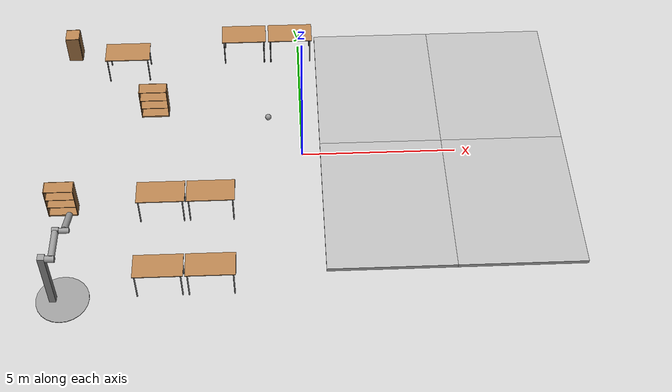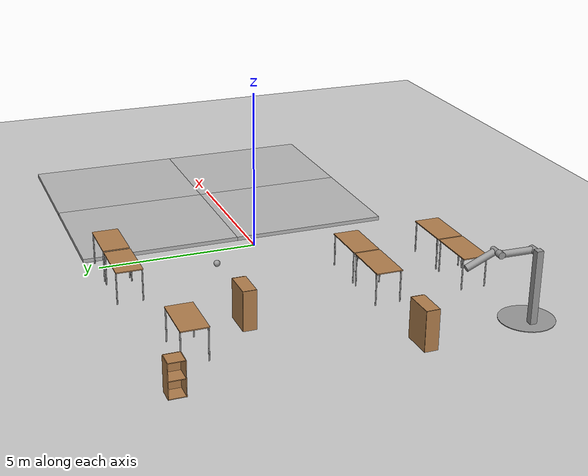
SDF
<sdf version="1.6">
 <world name="default">
  <model name="ground_plane">
   <static>1</static>
   <link name="link">
    <collision name="collision">
     <geometry><plane><normal>0 0 1</normal><size>100 100</size></plane></geometry>
     <surface>
      <contact><collide_bitmask>65535</collide_bitmask></contact>
      <friction><ode><mu>100</mu><mu2>50</mu2></ode></friction>
     </surface>
    </collision>
    <visual name="visual">
     <cast_shadows>0</cast_shadows>
     <geometry><plane><normal>0 0 1</normal><size>100 100</size></plane></geometry>
     <material>
      <script><uri>file://media/materials/scripts/gazebo.material</uri><name>Gazebo/Grey</name></script>
     </material>
    </visual>
   </link>
  </model>
  <model name="cabinet">
   <static>1</static>
   <link name="cabinet_bottom_plate">
    <inertial>
     <pose>0 0 -1 0 -0 0</pose>
     <inertia><ixx>2.05</ixx><ixy>0</ixy><ixz>0</ixz><iyy>2.05</iyy><iyz>0</iyz><izz>2.05</izz></inertia>
     <mass>25</mass>
    </inertial>
    <collision name="cabinet_bottom_plate_geom">
     <pose>0 0 0.01 0 -0 0</pose>
     <geometry><box><size>0.45 0.45 0.02</size></box></geometry>
    </collision>
    <visual name="cabinet_bottom_plate_geom_visual">
     <pose>0 0 0.01 0 -0 0</pose>
     <geometry><box><size>0.45 0.45 0.02</size></box></geometry>
     <material>
      <script><uri>file://media/materials/scripts/gazebo.material</uri><name>Gazebo/Wood</name></script>
     </material>
    </visual>
    <collision name="cabinet_bottom_plate_geom_cabinet_back_plate">
     <pose>0.235 0 0.51 0 -0 0</pose>
     <geometry><box><size>0.02 0.45 1.02</size></box></geometry>
    </collision>
    <visual name="cabinet_bottom_plate_geom_cabinet_back_plate_visual">
     <pose>0.235 0 0.51 0 -0 0</pose>
     <geometry><box><size>0.02 0.45 1.02</size></box></geometry>
     <material>
      <script><uri>file://media/materials/scripts/gazebo.material</uri><name>Gazebo/Wood</name></script>
     </material>
    </visual>
    <collision name="cabinet_bottom_plate_geom_cabinet_left_plate">
     <pose>0 0.235 0.51 0 -0 0</pose>
     <geometry><box><size>0.45 0.02 1.02</size></box></geometry>
    </collision>
    <visual name="cabinet_bottom_plate_geom_cabinet_left_plate_visual">
     <pose>0 0.235 0.51 0 -0 0</pose>
     <geometry><box><size>0.45 0.02 1.02</size></box></geometry>
     <material>
      <script><uri>file://media/materials/scripts/gazebo.material</uri><name>Gazebo/Wood</name></script>
     </material>
    </visual>
    <collision name="cabinet_bottom_plate_geom_cabinet_middle_plate">
     <pose>0 0 0.51 0 -0 0</pose>
     <geometry><box><size>0.45 0.45 0.02</size></box></geometry>
    </collision>
    <visual name="cabinet_bottom_plate_geom_cabinet_middle_plate_visual">
     <pose>0 0 0.51 0 -0 0</pose>
     <geometry><box><size>0.45 0.45 0.02</size></box></geometry>
     <material>
      <script><uri>file://media/materials/scripts/gazebo.material</uri><name>Gazebo/Wood</name></script>
     </material>
    </visual>
    <collision name="cabinet_bottom_plate_geom_cabinet_right_plate">
     <pose>0 -0.235 0.51 0 -0 0</pose>
     <geometry><box><size>0.45 0.02 1.02</size></box></geometry>
    </collision>
    <visual name="cabinet_bottom_plate_geom_cabinet_right_plate_visual">
     <pose>0 -0.235 0.51 0 -0 0</pose>
     <geometry><box><size>0.45 0.02 1.02</size></box></geometry>
     <material>
      <script><uri>file://media/materials/scripts/gazebo.material</uri><name>Gazebo/Wood</name></script>
     </material>
    </visual>
    <collision name="cabinet_bottom_plate_geom_cabinet_top_plate">
     <pose>0 0 1.01 0 -0 0</pose>
     <geometry><box><size>0.45 0.45 0.02</size></box></geometry>
    </collision>
    <visual name="cabinet_bottom_plate_geom_cabinet_top_plate_visual">
     <pose>0 0 1.01 0 -0 0</pose>
     <geometry><box><size>0.45 0.45 0.02</size></box></geometry>
     <material>
      <script><uri>file://media/materials/scripts/gazebo.material</uri><name>Gazebo/Wood</name></script>
     </material>
    </visual>
   </link>
   <pose>-7.79073 4.85276 0 0 -0 0</pose>
  </model>
  <model name="bookshelf">
   <static>1</static>
   <link name="link">
    <inertial><mass>1</mass></inertial>
    <collision name="back">
     <pose>0 0.005 0.6 0 -0 0</pose>
     <geometry><box><size>0.9 0.01 1.2</size></box></geometry>
    </collision>
    <visual name="visual1">
     <pose>0 0.005 0.6 0 -0 0</pose>
     <geometry><box><size>0.9 0.01 1.2</size></box></geometry>
     <material>
      <script><uri>file://media/materials/scripts/gazebo.material</uri><name>Gazebo/Wood</name></script>
     </material>
    </visual>
    <collision name="left_side">
     <pose>0.45 -0.195 0.6 0 -0 0</pose>
     <geometry><box><size>0.02 0.4 1.2</size></box></geometry>
    </collision>
    <visual name="visual2">
     <pose>0.45 -0.195 0.6 0 -0 0</pose>
     <geometry><box><size>0.02 0.4 1.2</size></box></geometry>
     <material>
      <script><uri>file://media/materials/scripts/gazebo.material</uri><name>Gazebo/Wood</name></script>
     </material>
    </visual>
    <collision name="right_side">
     <pose>-0.45 -0.195 0.6 0 -0 0</pose>
     <geometry><box><size>0.02 0.4 1.2</size></box></geometry>
    </collision>
    <visual name="visual3">
     <pose>-0.45 -0.195 0.6 0 -0 0</pose>
     <geometry><box><size>0.02 0.4 1.2</size></box></geometry>
     <material>
      <script><uri>file://media/materials/scripts/gazebo.material</uri><name>Gazebo/Wood</name></script>
     </material>
    </visual>
    <collision name="bottom">
     <pose>0 -0.195 0.03 0 -0 0</pose>
     <geometry><box><size>0.88 0.4 0.06</size></box></geometry>
    </collision>
    <visual name="visual4">
     <pose>0 -0.195 0.03 0 -0 0</pose>
     <geometry><box><size>0.88 0.4 0.06</size></box></geometry>
     <material>
      <script><uri>file://media/materials/scripts/gazebo.material</uri><name>Gazebo/Wood</name></script>
     </material>
    </visual>
    <collision name="top">
     <pose>0 -0.195 1.19 0 -0 0</pose>
     <geometry><box><size>0.88 0.4 0.02</size></box></geometry>
    </collision>
    <visual name="visual5">
     <pose>0 -0.195 1.19 0 -0 0</pose>
     <geometry><box><size>0.88 0.4 0.02</size></box></geometry>
     <material>
      <script><uri>file://media/materials/scripts/gazebo.material</uri><name>Gazebo/Wood</name></script>
     </material>
    </visual>
    <collision name="low_shelf">
     <pose>0 -0.195 0.43 0 -0 0</pose>
     <geometry><box><size>0.88 0.4 0.02</size></box></geometry>
    </collision>
    <visual name="visual6">
     <pose>0 -0.195 0.43 0 -0 0</pose>
     <geometry><box><size>0.88 0.4 0.02</size></box></geometry>
     <material>
      <script><uri>file://media/materials/scripts/gazebo.material</uri><name>Gazebo/Wood</name></script>
     </material>
    </visual>
    <collision name="high_shelf">
     <pose>0 -0.195 0.8 0 -0 0</pose>
     <geometry><box><size>0.88 0.4 0.02</size></box></geometry>
    </collision>
    <visual name="visual7">
     <pose>0 -0.195 0.8 0 -0 0</pose>
     <geometry><box><size>0.88 0.4 0.02</size></box></geometry>
     <material>
      <script><uri>file://media/materials/scripts/gazebo.material</uri><name>Gazebo/Wood</name></script>
     </material>
    </visual>
   </link>
   <pose>-4.88239 2.23385 0 0 -0 0</pose>
  </model>
  <model name="table">
   <static>1</static>
   <link name="link">
    <collision name="surface">
     <pose>0 0 1 0 -0 0</pose>
     <geometry><box><size>1.5 0.8 0.03</size></box></geometry>
     <surface><friction><ode><mu>0.6</mu><mu2>0.6</mu2></ode></friction></surface>
    </collision>
    <visual name="visual1">
     <pose>0 0 1 0 -0 0</pose>
     <geometry><box><size>1.5 0.8 0.03</size></box></geometry>
     <material>
      <script><uri>file://media/materials/scripts/gazebo.material</uri><name>Gazebo/Wood</name></script>
     </material>
    </visual>
    <collision name="front_left_leg">
     <pose>0.68 0.38 0.5 0 -0 0</pose>
     <geometry><cylinder><radius>0.02</radius><length>1</length></cylinder></geometry>
    </collision>
    <visual name="front_left_leg">
     <pose>0.68 0.38 0.5 0 -0 0</pose>
     <geometry><cylinder><radius>0.02</radius><length>1</length></cylinder></geometry>
     <material>
      <script><uri>file://media/materials/scripts/gazebo.material</uri><name>Gazebo/Grey</name></script>
     </material>
    </visual>
    <collision name="front_right_leg">
     <pose>0.68 -0.38 0.5 0 -0 0</pose>
     <geometry><cylinder><radius>0.02</radius><length>1</length></cylinder></geometry>
    </collision>
    <visual name="front_right_leg">
     <pose>0.68 -0.38 0.5 0 -0 0</pose>
     <geometry><cylinder><radius>0.02</radius><length>1</length></cylinder></geometry>
     <material>
      <script><uri>file://media/materials/scripts/gazebo.material</uri><name>Gazebo/Grey</name></script>
     </material>
    </visual>
    <collision name="back_right_leg">
     <pose>-0.68 -0.38 0.5 0 -0 0</pose>
     <geometry><cylinder><radius>0.02</radius><length>1</length></cylinder></geometry>
    </collision>
    <visual name="back_right_leg">
     <pose>-0.68 -0.38 0.5 0 -0 0</pose>
     <geometry><cylinder><radius>0.02</radius><length>1</length></cylinder></geometry>
     <material>
      <script><uri>file://media/materials/scripts/gazebo.material</uri><name>Gazebo/Grey</name></script>
     </material>
    </visual>
    <collision name="back_left_leg">
     <pose>-0.68 0.38 0.5 0 -0 0</pose>
     <geometry><cylinder><radius>0.02</radius><length>1</length></cylinder></geometry>
    </collision>
    <visual name="back_left_leg">
     <pose>-0.68 0.38 0.5 0 -0 0</pose>
     <geometry><cylinder><radius>0.02</radius><length>1</length></cylinder></geometry>
     <material>
      <script><uri>file://media/materials/scripts/gazebo.material</uri><name>Gazebo/Grey</name></script>
     </material>
    </visual>
   </link>
   <pose>-5.82965 3.95107 0 0 -0 0</pose>
  </model>
  <model name="table_0">
   <static>1</static>
   <link name="link">
    <collision name="surface">
     <pose>0 0 1 0 -0 0</pose>
     <geometry><box><size>1.5 0.8 0.03</size></box></geometry>
     <surface><friction><ode><mu>0.6</mu><mu2>0.6</mu2></ode></friction></surface>
    </collision>
    <visual name="visual1">
     <pose>0 0 1 0 -0 0</pose>
     <geometry><box><size>1.5 0.8 0.03</size></box></geometry>
     <material>
      <script><uri>file://media/materials/scripts/gazebo.material</uri><name>Gazebo/Wood</name></script>
     </material>
    </visual>
    <collision name="front_left_leg">
     <pose>0.68 0.38 0.5 0 -0 0</pose>
     <geometry><cylinder><radius>0.02</radius><length>1</length></cylinder></geometry>
    </collision>
    <visual name="front_left_leg">
     <pose>0.68 0.38 0.5 0 -0 0</pose>
     <geometry><cylinder><radius>0.02</radius><length>1</length></cylinder></geometry>
     <material>
      <script><uri>file://media/materials/scripts/gazebo.material</uri><name>Gazebo/Grey</name></script>
     </material>
    </visual>
    <collision name="front_right_leg">
     <pose>0.68 -0.38 0.5 0 -0 0</pose>
     <geometry><cylinder><radius>0.02</radius><length>1</length></cylinder></geometry>
    </collision>
    <visual name="front_right_leg">
     <pose>0.68 -0.38 0.5 0 -0 0</pose>
     <geometry><cylinder><radius>0.02</radius><length>1</length></cylinder></geometry>
     <material>
      <script><uri>file://media/materials/scripts/gazebo.material</uri><name>Gazebo/Grey</name></script>
     </material>
    </visual>
    <collision name="back_right_leg">
     <pose>-0.68 -0.38 0.5 0 -0 0</pose>
     <geometry><cylinder><radius>0.02</radius><length>1</length></cylinder></geometry>
    </collision>
    <visual name="back_right_leg">
     <pose>-0.68 -0.38 0.5 0 -0 0</pose>
     <geometry><cylinder><radius>0.02</radius><length>1</length></cylinder></geometry>
     <material>
      <script><uri>file://media/materials/scripts/gazebo.material</uri><name>Gazebo/Grey</name></script>
     </material>
    </visual>
    <collision name="back_left_leg">
     <pose>-0.68 0.38 0.5 0 -0 0</pose>
     <geometry><cylinder><radius>0.02</radius><length>1</length></cylinder></geometry>
    </collision>
    <visual name="back_left_leg">
     <pose>-0.68 0.38 0.5 0 -0 0</pose>
     <geometry><cylinder><radius>0.02</radius><length>1</length></cylinder></geometry>
     <material>
      <script><uri>file://media/materials/scripts/gazebo.material</uri><name>Gazebo/Grey</name></script>
     </material>
    </visual>
   </link>
   <pose>-0.288993 4.6714 0 0 -0 0</pose>
  </model>
  <model name="table_1">
   <static>1</static>
   <link name="link">
    <collision name="surface">
     <pose>0 0 1 0 -0 0</pose>
     <geometry><box><size>1.5 0.8 0.03</size></box></geometry>
     <surface><friction><ode><mu>0.6</mu><mu2>0.6</mu2></ode></friction></surface>
    </collision>
    <visual name="visual1">
     <pose>0 0 1 0 -0 0</pose>
     <geometry><box><size>1.5 0.8 0.03</size></box></geometry>
     <material>
      <script><uri>file://media/materials/scripts/gazebo.material</uri><name>Gazebo/Wood</name></script>
     </material>
    </visual>
    <collision name="front_left_leg">
     <pose>0.68 0.38 0.5 0 -0 0</pose>
     <geometry><cylinder><radius>0.02</radius><length>1</length></cylinder></geometry>
    </collision>
    <visual name="front_left_leg">
     <pose>0.68 0.38 0.5 0 -0 0</pose>
     <geometry><cylinder><radius>0.02</radius><length>1</length></cylinder></geometry>
     <material>
      <script><uri>file://media/materials/scripts/gazebo.material</uri><name>Gazebo/Grey</name></script>
     </material>
    </visual>
    <collision name="front_right_leg">
     <pose>0.68 -0.38 0.5 0 -0 0</pose>
     <geometry><cylinder><radius>0.02</radius><length>1</length></cylinder></geometry>
    </collision>
    <visual name="front_right_leg">
     <pose>0.68 -0.38 0.5 0 -0 0</pose>
     <geometry><cylinder><radius>0.02</radius><length>1</length></cylinder></geometry>
     <material>
      <script><uri>file://media/materials/scripts/gazebo.material</uri><name>Gazebo/Grey</name></script>
     </material>
    </visual>
    <collision name="back_right_leg">
     <pose>-0.68 -0.38 0.5 0 -0 0</pose>
     <geometry><cylinder><radius>0.02</radius><length>1</length></cylinder></geometry>
    </collision>
    <visual name="back_right_leg">
     <pose>-0.68 -0.38 0.5 0 -0 0</pose>
     <geometry><cylinder><radius>0.02</radius><length>1</length></cylinder></geometry>
     <material>
      <script><uri>file://media/materials/scripts/gazebo.material</uri><name>Gazebo/Grey</name></script>
     </material>
    </visual>
    <collision name="back_left_leg">
     <pose>-0.68 0.38 0.5 0 -0 0</pose>
     <geometry><cylinder><radius>0.02</radius><length>1</length></cylinder></geometry>
    </collision>
    <visual name="back_left_leg">
     <pose>-0.68 0.38 0.5 0 -0 0</pose>
     <geometry><cylinder><radius>0.02</radius><length>1</length></cylinder></geometry>
     <material>
      <script><uri>file://media/materials/scripts/gazebo.material</uri><name>Gazebo/Grey</name></script>
     </material>
    </visual>
   </link>
   <pose>-1.87609 4.67031 0 0 -0 0</pose>
  </model>
  <model name="table_2">
   <static>1</static>
   <link name="link">
    <collision name="surface">
     <pose>0 0 1 0 -0 0</pose>
     <geometry><box><size>1.5 0.8 0.03</size></box></geometry>
     <surface><friction><ode><mu>0.6</mu><mu2>0.6</mu2></ode></friction></surface>
    </collision>
    <visual name="visual1">
     <pose>0 0 1 0 -0 0</pose>
     <geometry><box><size>1.5 0.8 0.03</size></box></geometry>
     <material>
      <script><uri>file://media/materials/scripts/gazebo.material</uri><name>Gazebo/Wood</name></script>
     </material>
    </visual>
    <collision name="front_left_leg">
     <pose>0.68 0.38 0.5 0 -0 0</pose>
     <geometry><cylinder><radius>0.02</radius><length>1</length></cylinder></geometry>
    </collision>
    <visual name="front_left_leg">
     <pose>0.68 0.38 0.5 0 -0 0</pose>
     <geometry><cylinder><radius>0.02</radius><length>1</length></cylinder></geometry>
     <material>
      <script><uri>file://media/materials/scripts/gazebo.material</uri><name>Gazebo/Grey</name></script>
     </material>
    </visual>
    <collision name="front_right_leg">
     <pose>0.68 -0.38 0.5 0 -0 0</pose>
     <geometry><cylinder><radius>0.02</radius><length>1</length></cylinder></geometry>
    </collision>
    <visual name="front_right_leg">
     <pose>0.68 -0.38 0.5 0 -0 0</pose>
     <geometry><cylinder><radius>0.02</radius><length>1</length></cylinder></geometry>
     <material>
      <script><uri>file://media/materials/scripts/gazebo.material</uri><name>Gazebo/Grey</name></script>
     </material>
    </visual>
    <collision name="back_right_leg">
     <pose>-0.68 -0.38 0.5 0 -0 0</pose>
     <geometry><cylinder><radius>0.02</radius><length>1</length></cylinder></geometry>
    </collision>
    <visual name="back_right_leg">
     <pose>-0.68 -0.38 0.5 0 -0 0</pose>
     <geometry><cylinder><radius>0.02</radius><length>1</length></cylinder></geometry>
     <material>
      <script><uri>file://media/materials/scripts/gazebo.material</uri><name>Gazebo/Grey</name></script>
     </material>
    </visual>
    <collision name="back_left_leg">
     <pose>-0.68 0.38 0.5 0 -0 0</pose>
     <geometry><cylinder><radius>0.02</radius><length>1</length></cylinder></geometry>
    </collision>
    <visual name="back_left_leg">
     <pose>-0.68 0.38 0.5 0 -0 0</pose>
     <geometry><cylinder><radius>0.02</radius><length>1</length></cylinder></geometry>
     <material>
      <script><uri>file://media/materials/scripts/gazebo.material</uri><name>Gazebo/Grey</name></script>
     </material>
    </visual>
   </link>
   <pose>-4.46585 -2.17895 0 0 -0 0</pose>
  </model>
  <model name="table_3">
   <static>1</static>
   <link name="link">
    <collision name="surface">
     <pose>0 0 1 0 -0 0</pose>
     <geometry><box><size>1.5 0.8 0.03</size></box></geometry>
     <surface><friction><ode><mu>0.6</mu><mu2>0.6</mu2></ode></friction></surface>
    </collision>
    <visual name="visual1">
     <pose>0 0 1 0 -0 0</pose>
     <geometry><box><size>1.5 0.8 0.03</size></box></geometry>
     <material>
      <script><uri>file://media/materials/scripts/gazebo.material</uri><name>Gazebo/Wood</name></script>
     </material>
    </visual>
    <collision name="front_left_leg">
     <pose>0.68 0.38 0.5 0 -0 0</pose>
     <geometry><cylinder><radius>0.02</radius><length>1</length></cylinder></geometry>
    </collision>
    <visual name="front_left_leg">
     <pose>0.68 0.38 0.5 0 -0 0</pose>
     <geometry><cylinder><radius>0.02</radius><length>1</length></cylinder></geometry>
     <material>
      <script><uri>file://media/materials/scripts/gazebo.material</uri><name>Gazebo/Grey</name></script>
     </material>
    </visual>
    <collision name="front_right_leg">
     <pose>0.68 -0.38 0.5 0 -0 0</pose>
     <geometry><cylinder><radius>0.02</radius><length>1</length></cylinder></geometry>
    </collision>
    <visual name="front_right_leg">
     <pose>0.68 -0.38 0.5 0 -0 0</pose>
     <geometry><cylinder><radius>0.02</radius><length>1</length></cylinder></geometry>
     <material>
      <script><uri>file://media/materials/scripts/gazebo.material</uri><name>Gazebo/Grey</name></script>
     </material>
    </visual>
    <collision name="back_right_leg">
     <pose>-0.68 -0.38 0.5 0 -0 0</pose>
     <geometry><cylinder><radius>0.02</radius><length>1</length></cylinder></geometry>
    </collision>
    <visual name="back_right_leg">
     <pose>-0.68 -0.38 0.5 0 -0 0</pose>
     <geometry><cylinder><radius>0.02</radius><length>1</length></cylinder></geometry>
     <material>
      <script><uri>file://media/materials/scripts/gazebo.material</uri><name>Gazebo/Grey</name></script>
     </material>
    </visual>
    <collision name="back_left_leg">
     <pose>-0.68 0.38 0.5 0 -0 0</pose>
     <geometry><cylinder><radius>0.02</radius><length>1</length></cylinder></geometry>
    </collision>
    <visual name="back_left_leg">
     <pose>-0.68 0.38 0.5 0 -0 0</pose>
     <geometry><cylinder><radius>0.02</radius><length>1</length></cylinder></geometry>
     <material>
      <script><uri>file://media/materials/scripts/gazebo.material</uri><name>Gazebo/Grey</name></script>
     </material>
    </visual>
   </link>
   <pose>-2.91567 -2.17764 0 0 -0 0</pose>
  </model>
  <model name="table_4">
   <static>1</static>
   <link name="link">
    <collision name="surface">
     <pose>0 0 1 0 -0 0</pose>
     <geometry><box><size>1.5 0.8 0.03</size></box></geometry>
     <surface><friction><ode><mu>0.6</mu><mu2>0.6</mu2></ode></friction></surface>
    </collision>
    <visual name="visual1">
     <pose>0 0 1 0 -0 0</pose>
     <geometry><box><size>1.5 0.8 0.03</size></box></geometry>
     <material>
      <script><uri>file://media/materials/scripts/gazebo.material</uri><name>Gazebo/Wood</name></script>
     </material>
    </visual>
    <collision name="front_left_leg">
     <pose>0.68 0.38 0.5 0 -0 0</pose>
     <geometry><cylinder><radius>0.02</radius><length>1</length></cylinder></geometry>
    </collision>
    <visual name="front_left_leg">
     <pose>0.68 0.38 0.5 0 -0 0</pose>
     <geometry><cylinder><radius>0.02</radius><length>1</length></cylinder></geometry>
     <material>
      <script><uri>file://media/materials/scripts/gazebo.material</uri><name>Gazebo/Grey</name></script>
     </material>
    </visual>
    <collision name="front_right_leg">
     <pose>0.68 -0.38 0.5 0 -0 0</pose>
     <geometry><cylinder><radius>0.02</radius><length>1</length></cylinder></geometry>
    </collision>
    <visual name="front_right_leg">
     <pose>0.68 -0.38 0.5 0 -0 0</pose>
     <geometry><cylinder><radius>0.02</radius><length>1</length></cylinder></geometry>
     <material>
      <script><uri>file://media/materials/scripts/gazebo.material</uri><name>Gazebo/Grey</name></script>
     </material>
    </visual>
    <collision name="back_right_leg">
     <pose>-0.68 -0.38 0.5 0 -0 0</pose>
     <geometry><cylinder><radius>0.02</radius><length>1</length></cylinder></geometry>
    </collision>
    <visual name="back_right_leg">
     <pose>-0.68 -0.38 0.5 0 -0 0</pose>
     <geometry><cylinder><radius>0.02</radius><length>1</length></cylinder></geometry>
     <material>
      <script><uri>file://media/materials/scripts/gazebo.material</uri><name>Gazebo/Grey</name></script>
     </material>
    </visual>
    <collision name="back_left_leg">
     <pose>-0.68 0.38 0.5 0 -0 0</pose>
     <geometry><cylinder><radius>0.02</radius><length>1</length></cylinder></geometry>
    </collision>
    <visual name="back_left_leg">
     <pose>-0.68 0.38 0.5 0 -0 0</pose>
     <geometry><cylinder><radius>0.02</radius><length>1</length></cylinder></geometry>
     <material>
      <script><uri>file://media/materials/scripts/gazebo.material</uri><name>Gazebo/Grey</name></script>
     </material>
    </visual>
   </link>
   <pose>-4.42755 -4.94835 0 0 -0 0</pose>
  </model>
  <model name="table_5">
   <static>1</static>
   <link name="link">
    <collision name="surface">
     <pose>0 0 1 0 -0 0</pose>
     <geometry><box><size>1.5 0.8 0.03</size></box></geometry>
     <surface><friction><ode><mu>0.6</mu><mu2>0.6</mu2></ode></friction></surface>
    </collision>
    <visual name="visual1">
     <pose>0 0 1 0 -0 0</pose>
     <geometry><box><size>1.5 0.8 0.03</size></box></geometry>
     <material>
      <script><uri>file://media/materials/scripts/gazebo.material</uri><name>Gazebo/Wood</name></script>
     </material>
    </visual>
    <collision name="front_left_leg">
     <pose>0.68 0.38 0.5 0 -0 0</pose>
     <geometry><cylinder><radius>0.02</radius><length>1</length></cylinder></geometry>
    </collision>
    <visual name="front_left_leg">
     <pose>0.68 0.38 0.5 0 -0 0</pose>
     <geometry><cylinder><radius>0.02</radius><length>1</length></cylinder></geometry>
     <material>
      <script><uri>file://media/materials/scripts/gazebo.material</uri><name>Gazebo/Grey</name></script>
     </material>
    </visual>
    <collision name="front_right_leg">
     <pose>0.68 -0.38 0.5 0 -0 0</pose>
     <geometry><cylinder><radius>0.02</radius><length>1</length></cylinder></geometry>
    </collision>
    <visual name="front_right_leg">
     <pose>0.68 -0.38 0.5 0 -0 0</pose>
     <geometry><cylinder><radius>0.02</radius><length>1</length></cylinder></geometry>
     <material>
      <script><uri>file://media/materials/scripts/gazebo.material</uri><name>Gazebo/Grey</name></script>
     </material>
    </visual>
    <collision name="back_right_leg">
     <pose>-0.68 -0.38 0.5 0 -0 0</pose>
     <geometry><cylinder><radius>0.02</radius><length>1</length></cylinder></geometry>
    </collision>
    <visual name="back_right_leg">
     <pose>-0.68 -0.38 0.5 0 -0 0</pose>
     <geometry><cylinder><radius>0.02</radius><length>1</length></cylinder></geometry>
     <material>
      <script><uri>file://media/materials/scripts/gazebo.material</uri><name>Gazebo/Grey</name></script>
     </material>
    </visual>
    <collision name="back_left_leg">
     <pose>-0.68 0.38 0.5 0 -0 0</pose>
     <geometry><cylinder><radius>0.02</radius><length>1</length></cylinder></geometry>
    </collision>
    <visual name="back_left_leg">
     <pose>-0.68 0.38 0.5 0 -0 0</pose>
     <geometry><cylinder><radius>0.02</radius><length>1</length></cylinder></geometry>
     <material>
      <script><uri>file://media/materials/scripts/gazebo.material</uri><name>Gazebo/Grey</name></script>
     </material>
    </visual>
   </link>
   <pose>-2.87754 -4.94722 0 0 -0 0</pose>
  </model>
  <model name="my_ball">
   <link name="link_0">
    <inertial>
     <mass>1</mass>
     <inertia><ixx>0.1</ixx><ixy>0</ixy><ixz>0</ixz><iyy>0.1</iyy><iyz>0</iyz><izz>0.1</izz></inertia>
    </inertial>
    <visual name="visual">
     <geometry><sphere><radius>0.1</radius></sphere></geometry>
     <material>
      <lighting>1</lighting>
      <script><uri>file://media/materials/scripts/gazebo.material</uri><name>Gazebo/Grey</name></script>
      <ambient>1 1 1 1</ambient>
      <diffuse>1 1 1 1</diffuse>
      <specular>1 1 1 1</specular>
      <emissive>1 1 1 1</emissive>
      <shader type="vertex"><normal_map>__default__</normal_map></shader>
     </material>
    </visual>
    <collision name="collision">
     <geometry><sphere><radius>0.1</radius></sphere></geometry>
     <surface>
      <friction>
       <ode><mu>1</mu><mu2>1</mu2><fdir1>0 0 0</fdir1><slip1>0</slip1><slip2>0</slip2></ode>
       <torsional>
        <coefficient>1</coefficient>
        <patch_radius>0</patch_radius>
        <surface_radius>0</surface_radius>
        <use_patch_radius>1</use_patch_radius>
        <ode><slip>0</slip></ode>
       </torsional>
      </friction>
      <bounce><restitution_coefficient>0</restitution_coefficient><threshold>1e+06</threshold></bounce>
      <contact>
       <collide_without_contact>0</collide_without_contact>
       <collide_without_contact_bitmask>1</collide_without_contact_bitmask>
       <collide_bitmask>1</collide_bitmask>
       <ode>
        <soft_cfm>0</soft_cfm>
        <soft_erp>0.2</soft_erp>
        <kp>1e+13</kp>
        <kd>1</kd>
        <max_vel>0.01</max_vel>
        <min_depth>0</min_depth>
       </ode>
       <bullet>
        <split_impulse>1</split_impulse>
        <split_impulse_penetration_threshold>-0.01</split_impulse_penetration_threshold>
        <soft_cfm>0</soft_cfm>
        <soft_erp>0.2</soft_erp>
        <kp>1e+13</kp>
        <kd>1</kd>
       </bullet>
      </contact>
     </surface>
    </collision>
   </link>
   <static>0</static>
   <pose>-1.09927 1.60374 0.1 0 -0 0</pose>
  </model>
  <model name="double_pendulum_with_base">
   <link name="base">
    <inertial>
     <mass>100</mass>
     <inertia><ixx>1</ixx><ixy>0</ixy><ixz>0</ixz><iyy>1</iyy><iyz>0</iyz><izz>1</izz></inertia>
    </inertial>
    <visual name="vis_plate_on_ground">
     <pose>0 0 0.01 0 -0 0</pose>
     <geometry><cylinder><radius>0.8</radius><length>0.02</length></cylinder></geometry>
     <material>
      <script><uri>file://media/materials/scripts/gazebo.material</uri><name>Gazebo/Grey</name></script>
     </material>
    </visual>
    <visual name="vis_pole">
     <pose>-0.275 0 1.1 0 -0 0</pose>
     <geometry><box><size>0.2 0.2 2.2</size></box></geometry>
     <material>
      <script><uri>file://media/materials/scripts/gazebo.material</uri><name>Gazebo/Grey</name></script>
     </material>
    </visual>
    <collision name="col_plate_on_ground">
     <pose>0 0 0.01 0 -0 0</pose>
     <geometry><cylinder><radius>0.8</radius><length>0.02</length></cylinder></geometry>
    </collision>
    <collision name="col_pole">
     <pose>-0.275 0 1.1 0 -0 0</pose>
     <geometry><box><size>0.2 0.2 2.2</size></box></geometry>
    </collision>
   </link>
   <link name="upper_link">
    <pose>0 0 2.1 -1.5708 0 0</pose>
    <inertial>
     <pose>0 0 0.5 0 -0 0</pose>
     <inertia><ixx>1</ixx><ixy>0</ixy><ixz>0</ixz><iyy>1</iyy><iyz>0</iyz><izz>1</izz></inertia>
     <mass>1</mass>
    </inertial>
    <visual name="vis_upper_joint">
     <pose>-0.05 0 0 3.14159 1.57079 3.14159</pose>
     <geometry><cylinder><radius>0.1</radius><length>0.3</length></cylinder></geometry>
     <material>
      <script><uri>file://media/materials/scripts/gazebo.material</uri><name>Gazebo/Grey</name></script>
     </material>
    </visual>
    <visual name="vis_lower_joint">
     <pose>0 0 1 3.14159 1.57079 3.14159</pose>
     <geometry><cylinder><radius>0.1</radius><length>0.2</length></cylinder></geometry>
     <material>
      <script><uri>file://media/materials/scripts/gazebo.material</uri><name>Gazebo/Grey</name></script>
     </material>
    </visual>
    <visual name="vis_cylinder">
     <pose>0 0 0.5 0 -0 0</pose>
     <geometry><cylinder><radius>0.1</radius><length>0.9</length></cylinder></geometry>
     <material>
      <script><uri>file://media/materials/scripts/gazebo.material</uri><name>Gazebo/Grey</name></script>
     </material>
    </visual>
    <collision name="col_upper_joint">
     <pose>-0.05 0 0 3.14159 1.57079 3.14159</pose>
     <geometry><cylinder><radius>0.1</radius><length>0.3</length></cylinder></geometry>
    </collision>
    <collision name="col_lower_joint">
     <pose>0 0 1 3.14159 1.57079 3.14159</pose>
     <geometry><cylinder><radius>0.1</radius><length>0.2</length></cylinder></geometry>
    </collision>
    <collision name="col_cylinder">
     <pose>0 0 0.5 0 -0 0</pose>
     <geometry><cylinder><radius>0.1</radius><length>0.9</length></cylinder></geometry>
    </collision>
   </link>
   <link name="lower_link">
    <pose>0.25 1 2.1 -2 0 0</pose>
    <inertial>
     <pose>0 0 0.5 0 -0 0</pose>
     <inertia><ixx>1</ixx><ixy>0</ixy><ixz>0</ixz><iyy>1</iyy><iyz>0</iyz><izz>1</izz></inertia>
     <mass>1</mass>
    </inertial>
    <visual name="vis_lower_joint">
     <pose>0 0 0 3.14159 1.57079 3.14159</pose>
     <geometry><cylinder><radius>0.08</radius><length>0.3</length></cylinder></geometry>
     <material>
      <script><uri>file://media/materials/scripts/gazebo.material</uri><name>Gazebo/Grey</name></script>
     </material>
    </visual>
    <visual name="vis_cylinder">
     <pose>0 0 0.5 0 -0 0</pose>
     <geometry><cylinder><radius>0.1</radius><length>0.9</length></cylinder></geometry>
     <material>
      <script><uri>file://media/materials/scripts/gazebo.material</uri><name>Gazebo/Grey</name></script>
     </material>
    </visual>
    <collision name="col_lower_joint">
     <pose>0 0 0 3.14159 1.57079 3.14159</pose>
     <geometry><cylinder><radius>0.08</radius><length>0.3</length></cylinder></geometry>
    </collision>
    <collision name="col_cylinder">
     <pose>0 0 0.5 0 -0 0</pose>
     <geometry><cylinder><radius>0.1</radius><length>0.9</length></cylinder></geometry>
    </collision>
   </link>
   <joint name="upper_joint" type="revolute">
    <parent>base</parent>
    <child>upper_link</child>
    <axis>
     <xyz>1 0 0</xyz>
     <use_parent_model_frame>1</use_parent_model_frame>
     <limit><lower>-1e+16</lower><upper>1e+16</upper></limit>
     <dynamics><spring_reference>0</spring_reference><spring_stiffness>0</spring_stiffness></dynamics>
    </axis>
   </joint>
   <joint name="lower_joint" type="revolute">
    <parent>upper_link</parent>
    <child>lower_link</child>
    <axis>
     <xyz>1 0 0</xyz>
     <use_parent_model_frame>1</use_parent_model_frame>
     <limit><lower>-1e+16</lower><upper>1e+16</upper></limit>
     <dynamics><spring_reference>0</spring_reference><spring_stiffness>0</spring_stiffness></dynamics>
    </axis>
   </joint>
   <pose>-7.32609 -5.36739 0 0 0 -0.025785</pose>
  </model>
  <model name="mud_box">
   <static>1</static>
   <link name="link">
    <collision name="collision"><geometry><box><size>8 10 0.2</size></box></geometry></collision>
    <visual name="visual_1">
     <pose>-2 2.5 0 0 -0 0</pose>
     <cast_shadows>0</cast_shadows>
     <geometry><box><size>4 5 0.2</size></box></geometry>
     <material>
      <script>
       <uri>model://mud_box/materials/scripts</uri>
       <uri>model://mud_box/materials/textures</uri>
       <name>vrc/mud</name>
      </script>
     </material>
    </visual>
    <visual name="visual_2">
     <pose>2 2.5 0 0 -0 0</pose>
     <cast_shadows>0</cast_shadows>
     <geometry><box><size>4 5 0.2</size></box></geometry>
     <material>
      <script>
       <uri>model://mud_box/materials/scripts</uri>
       <uri>model://mud_box/materials/textures</uri>
       <name>vrc/mud</name>
      </script>
     </material>
    </visual>
    <visual name="visual_3">
     <pose>2 -2.5 0 0 -0 0</pose>
     <cast_shadows>0</cast_shadows>
     <geometry><box><size>4 5 0.2</size></box></geometry>
     <material>
      <script>
       <uri>model://mud_box/materials/scripts</uri>
       <uri>model://mud_box/materials/textures</uri>
       <name>vrc/mud</name>
      </script>
     </material>
    </visual>
    <visual name="visual_4">
     <pose>-2 -2.5 0 0 -0 0</pose>
     <cast_shadows>0</cast_shadows>
     <geometry><box><size>4 5 0.2</size></box></geometry>
     <material>
      <script>
       <uri>model://mud_box/materials/scripts</uri>
       <uri>model://mud_box/materials/textures</uri>
       <name>vrc/mud</name>
      </script>
     </material>
    </visual>
   </link>
   <pose>4.57618 0.372556 0 0 -0 0</pose>
  </model>
  <model name="bookshelf_0">
   <static>1</static>
   <link name="link">
    <inertial><mass>1</mass></inertial>
    <collision name="back">
     <pose>0 0.005 0.6 0 -0 0</pose>
     <geometry><box><size>0.9 0.01 1.2</size></box></geometry>
    </collision>
    <visual name="visual1">
     <pose>0 0.005 0.6 0 -0 0</pose>
     <geometry><box><size>0.9 0.01 1.2</size></box></geometry>
     <material>
      <script><uri>file://media/materials/scripts/gazebo.material</uri><name>Gazebo/Wood</name></script>
     </material>
    </visual>
    <collision name="left_side">
     <pose>0.45 -0.195 0.6 0 -0 0</pose>
     <geometry><box><size>0.02 0.4 1.2</size></box></geometry>
    </collision>
    <visual name="visual2">
     <pose>0.45 -0.195 0.6 0 -0 0</pose>
     <geometry><box><size>0.02 0.4 1.2</size></box></geometry>
     <material>
      <script><uri>file://media/materials/scripts/gazebo.material</uri><name>Gazebo/Wood</name></script>
     </material>
    </visual>
    <collision name="right_side">
     <pose>-0.45 -0.195 0.6 0 -0 0</pose>
     <geometry><box><size>0.02 0.4 1.2</size></box></geometry>
    </collision>
    <visual name="visual3">
     <pose>-0.45 -0.195 0.6 0 -0 0</pose>
     <geometry><box><size>0.02 0.4 1.2</size></box></geometry>
     <material>
      <script><uri>file://media/materials/scripts/gazebo.material</uri><name>Gazebo/Wood</name></script>
     </material>
    </visual>
    <collision name="bottom">
     <pose>0 -0.195 0.03 0 -0 0</pose>
     <geometry><box><size>0.88 0.4 0.06</size></box></geometry>
    </collision>
    <visual name="visual4">
     <pose>0 -0.195 0.03 0 -0 0</pose>
     <geometry><box><size>0.88 0.4 0.06</size></box></geometry>
     <material>
      <script><uri>file://media/materials/scripts/gazebo.material</uri><name>Gazebo/Wood</name></script>
     </material>
    </visual>
    <collision name="top">
     <pose>0 -0.195 1.19 0 -0 0</pose>
     <geometry><box><size>0.88 0.4 0.02</size></box></geometry>
    </collision>
    <visual name="visual5">
     <pose>0 -0.195 1.19 0 -0 0</pose>
     <geometry><box><size>0.88 0.4 0.02</size></box></geometry>
     <material>
      <script><uri>file://media/materials/scripts/gazebo.material</uri><name>Gazebo/Wood</name></script>
     </material>
    </visual>
    <collision name="low_shelf">
     <pose>0 -0.195 0.43 0 -0 0</pose>
     <geometry><box><size>0.88 0.4 0.02</size></box></geometry>
    </collision>
    <visual name="visual6">
     <pose>0 -0.195 0.43 0 -0 0</pose>
     <geometry><box><size>0.88 0.4 0.02</size></box></geometry>
     <material>
      <script><uri>file://media/materials/scripts/gazebo.material</uri><name>Gazebo/Wood</name></script>
     </material>
    </visual>
    <collision name="high_shelf">
     <pose>0 -0.195 0.8 0 -0 0</pose>
     <geometry><box><size>0.88 0.4 0.02</size></box></geometry>
    </collision>
    <visual name="visual7">
     <pose>0 -0.195 0.8 0 -0 0</pose>
     <geometry><box><size>0.88 0.4 0.02</size></box></geometry>
     <material>
      <script><uri>file://media/materials/scripts/gazebo.material</uri><name>Gazebo/Wood</name></script>
     </material>
    </visual>
   </link>
   <pose>-7.59162 -1.83913 0 0 -0 0</pose>
  </model>
 </world>
</sdf>
